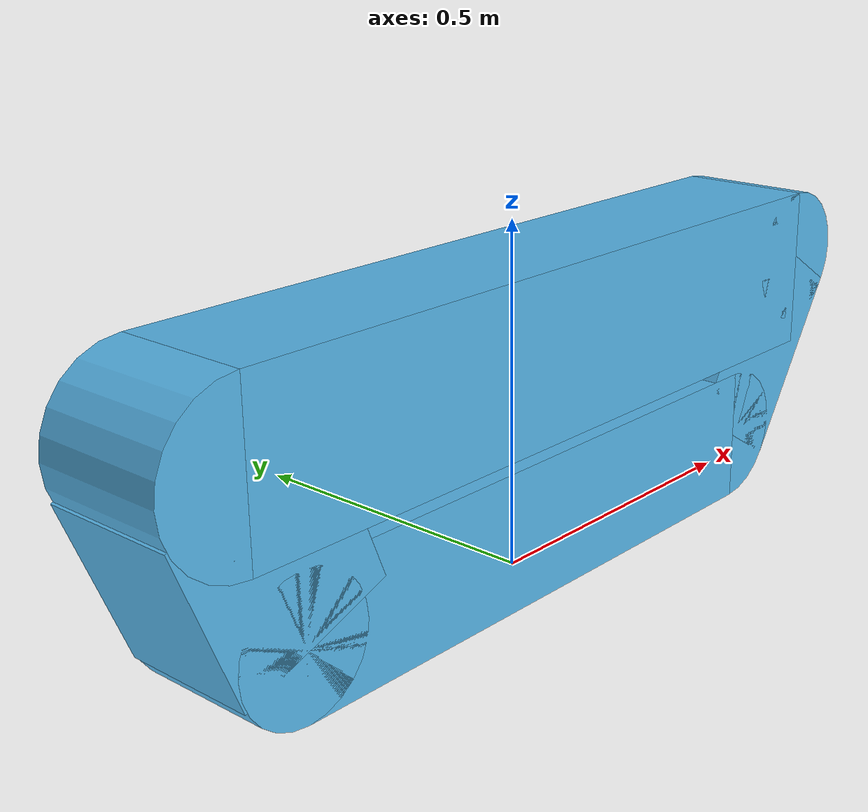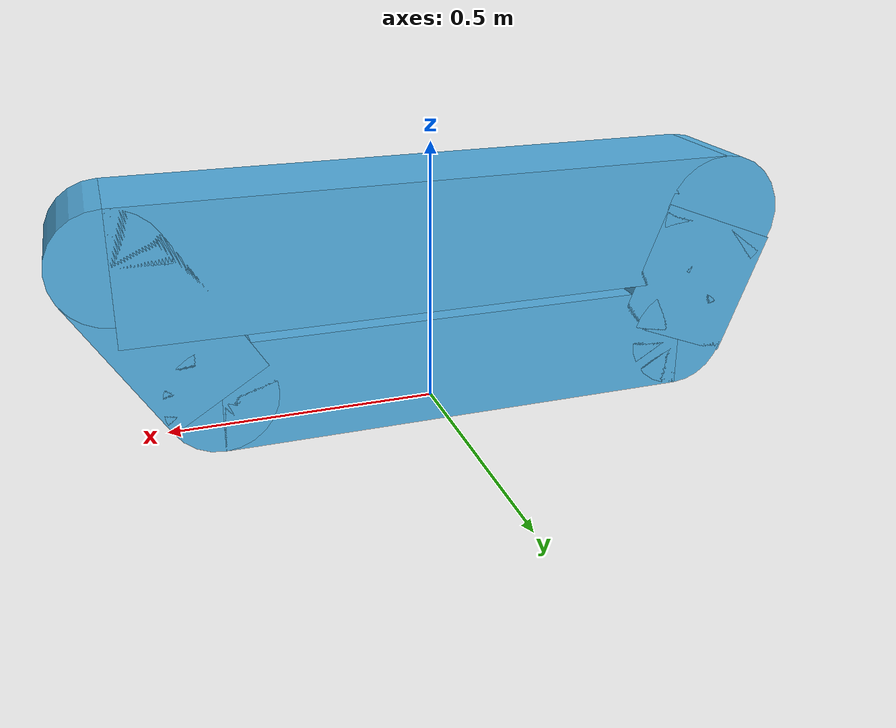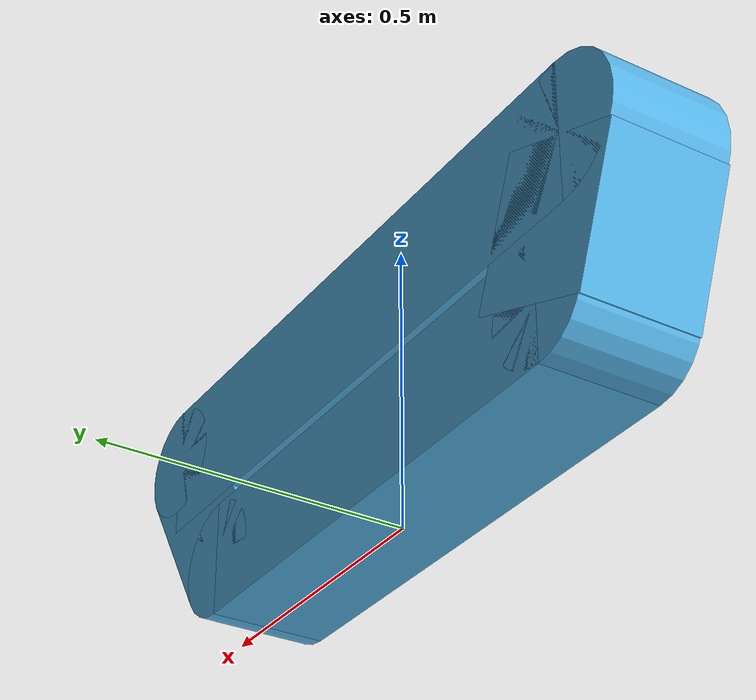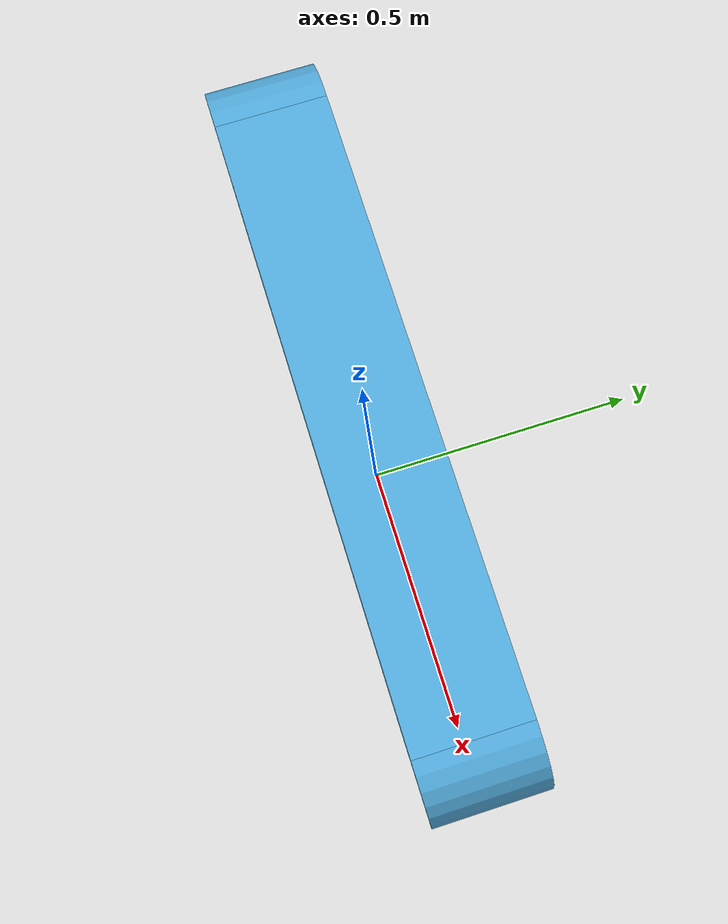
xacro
<?xml version="1.0"?>
<robot xmlns:xacro="http://www.ros.org/wiki/xacro" name="titan_track">

  <xacro:include filename="track.urdf.xacro"/>

  <link name="base_link">
    <inertial>
      <origin xyz="0 0 0"/>
      <mass value="1"/>
      <inertia ixx="1" ixy="0" ixz="0" iyy="1" iyz="0" izz="1"/>
    </inertial>
  </link>

  <xacro:property name="track_width" value="0.2"/>

  <xacro:titan_track name="track" width="${track_width}"/>

  <joint name="base_link_to_track" type="fixed">
    <parent link="base_link"/>
    <child link="track"/>
  </joint>

</robot>

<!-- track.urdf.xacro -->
<robot xmlns:xacro="http://www.ros.org/wiki/xacro" name="titan_track">

  <xacro:macro name="titan_track_segment" params="visual:=true collision:=true width r0 x0 z0 r1 x1 z1">

    <!-- Wheel -->
    <xacro:if value="${visual}">
      <visual>
        <origin xyz="${x0} 0 ${z0}" rpy="${pi / 2} 0 0"/>
        <geometry>
          <cylinder radius="${r0}" length="${width}"/>
        </geometry>
      </visual>
    </xacro:if>
    <xacro:if value="${collision}">
      <collision>
        <origin xyz="${x0} 0 ${z0}" rpy="${pi / 2} 0 0"/>
        <geometry>
          <cylinder radius="${r0}" length="${width}"/>
        </geometry>
      </collision>
    </xacro:if>

    <!-- Between the wheels -->
    <xacro:property name="r_small" value="${r1 if (r0 >= r1) else r0}"/>
    <xacro:property name="r_big" value="${r0 if (r0 >= r1) else r1}"/>
    <xacro:property name="x_small" value="${x1 if (r0 >= r1) else x0}"/>
    <xacro:property name="x_big" value="${x0 if (r0 >= r1) else x1}"/>
    <xacro:property name="z_small" value="${z1 if (r0 >= r1) else z0}"/>
    <xacro:property name="z_big" value="${z0 if (r0 >= r1) else z1}"/>
    <xacro:property name="d_x" value="${x_big - x_small}"/>
    <xacro:property name="d_z" value="${z_big - z_small}"/>
    <xacro:property name="d_s" value="${(d_x ** 2 + d_z ** 2) ** 0.5}"/>
    <xacro:property name="angle" value="${atan2(d_z, -d_x) + pi}"/>

    <!-- Along the segment -->
    <xacro:property name="seg_d_s" value="${(d_s ** 2 - (r_big - r_small) ** 2) ** 0.5}"/>
    <xacro:property name="seg_d_angle" value="${acos(seg_d_s / d_s)}"/>
    <xacro:property name="seg_angle" value="${angle + (-seg_d_angle if (r0 >= r1) else +seg_d_angle)}"/>
    <xacro:property name="big_seg_d_s" value="${r_big - r_small}"/>
    <xacro:property name="seg_x_big" value="${x_big + big_seg_d_s * cos(seg_angle + pi / 2)}"/>
    <xacro:property name="seg_z_big" value="${z_big + big_seg_d_s * sin(seg_angle + pi / 2)}"/>

    <!-- Track segment -->
    <xacro:if value="${visual}">
      <visual>
        <origin xyz="${(x_small + seg_x_big) / 2} 0 ${(z_small + seg_z_big) / 2}" rpy="0 ${seg_angle} 0"/>
        <geometry>
          <box size="${seg_d_s} ${width} ${2 * r_big}"/>
        </geometry>
      </visual>
    </xacro:if>
    <xacro:if value="${collision}">
      <collision>
        <origin xyz="${(x_small + seg_x_big) / 2} 0 ${(z_small + seg_z_big) / 2}" rpy="0 ${seg_angle} 0"/>
        <geometry>
          <box size="${seg_d_s} ${width} ${2 * r_big}"/>
        </geometry>
      </collision>
    </xacro:if>

  </xacro:macro>

  <xacro:macro name="titan_track_geometry" params="visual:=true collision:=true width">

    <xacro:titan_track_segment visual="${visual}" collision="${collision}" width="${width}"
      x0="+0.57" z0="0.355" r0="0.10"
      x1="-0.55" z1="0.335" r1="0.12"/>

    <xacro:titan_track_segment visual="${visual}" collision="${collision}" width="${width}"
      x0="-0.55" z0="0.335" r0="0.12"
      x1="-0.48" z1="0.100" r1="0.10"/>

    <xacro:titan_track_segment visual="${visual}" collision="${collision}" width="${width}"
      x0="-0.48" z0="0.100" r0="0.10"
      x1="+0.41" z1="0.100" r1="0.10"/>

    <xacro:titan_track_segment visual="${visual}" collision="${collision}" width="${width}"
      x0="+0.41" z0="0.100" r0="0.10"
      x1="+0.57" z1="0.355" r1="0.10"/>

  </xacro:macro>

  <xacro:macro name="titan_track" params="name width">

    <link name="${name}">

      <inertial>
        <origin xyz="0 0 0"/>
        <mass value="100"/>
        <inertia ixx="1" ixy="0" ixz="0" iyy="1" iyz="0" izz="1"/>
      </inertial>

      <xacro:titan_track_geometry visual="true" collision="true" width="${width}"/>

    </link>

  </xacro:macro>

</robot>
